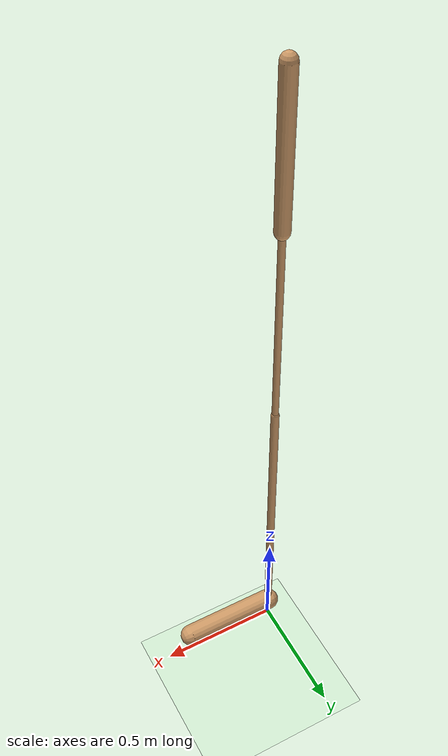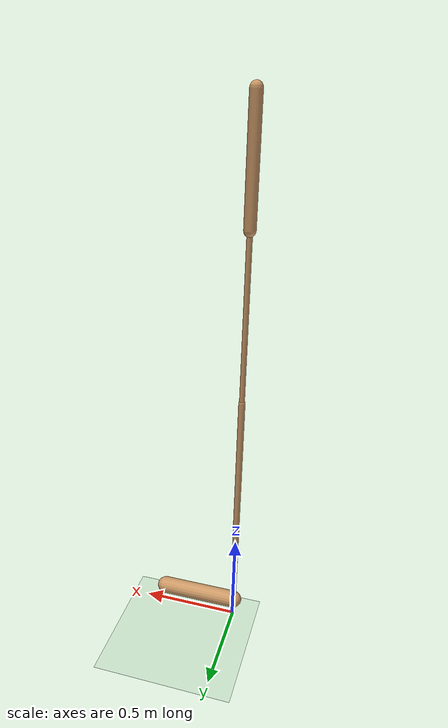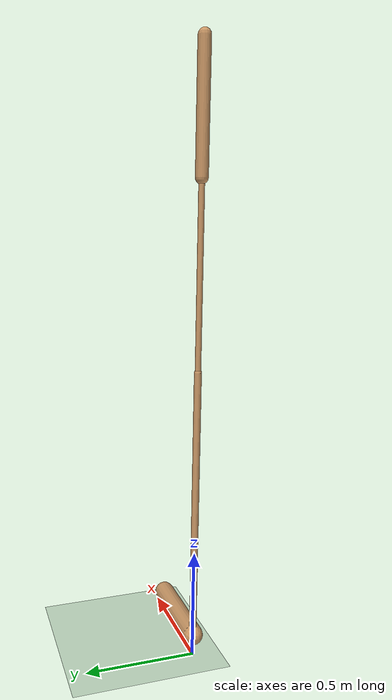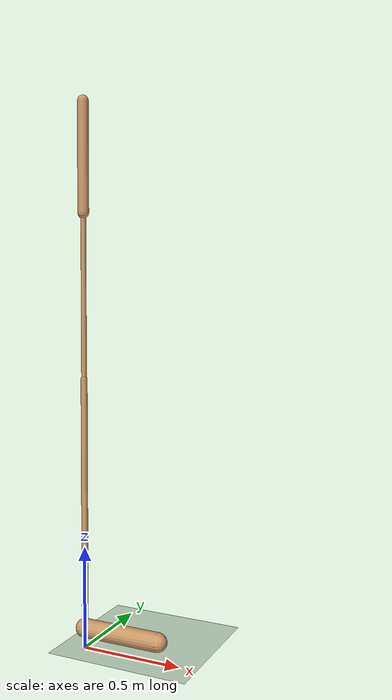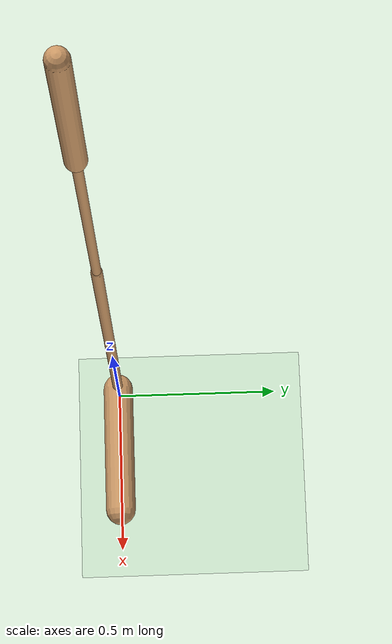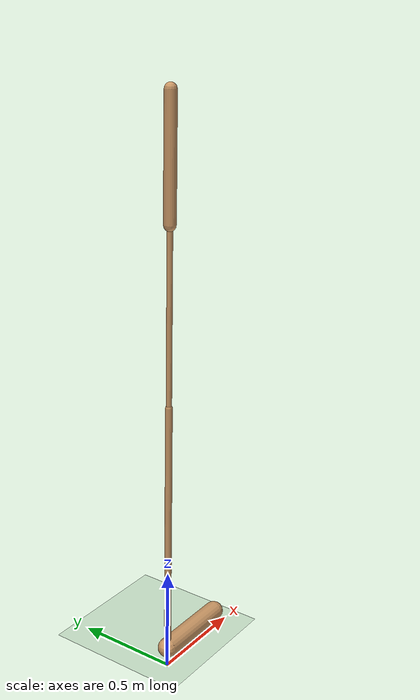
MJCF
<mujoco model="walker2d">
  <compiler angle="degree" inertiafromgeom="true" />
  <default>
    <joint armature="0.01" damping=".1" limited="true" />
    <geom conaffinity="0" condim="3" contype="1" density="1000" friction=".7 .1 .1" rgba="0.8 0.6 .4 1" />
  </default>
  <option integrator="RK4" timestep="0.002" />
  <worldbody>
    <light cutoff="100" diffuse="1 1 1" dir="-0 0 -1.3" directional="true" exponent="1" pos="0 0 1.3" specular=".1 .1 .1" />
    <geom conaffinity="1" condim="3" name="floor" pos="0 0 0" rgba="0.8 0.9 0.8 1" size="40 40 40" type="plane" material="MatPlane" />
    <body name="torso" pos="0 0 2.3635623514652253">
      <camera name="track" mode="trackcom" pos="0 -5 -1.25" xyaxes="1 0 0 0 0 1" />
      <joint armature="0" axis="1 0 0" damping="0" limited="false" name="rootx" pos="0 0 -1.25" stiffness="0" type="slide" />
      <joint armature="0" axis="0 0 1" damping="0" limited="false" name="rootz" pos="0 0 -1.25" ref="1.25" stiffness="0" type="slide" />
      <joint armature="0" axis="0 1 0" damping="0" limited="false" name="rooty" pos="0 0 0" stiffness="0" type="hinge" />
      <geom friction="0.9" name="torso_geom" size="0.026637131348252296 0.25830498337745667" type="capsule" />
      <body name="thigh" pos="0 0 -0.25830498337745667">
        <joint axis="0 -1 0" name="thigh_joint" pos="0 0 0" range="-150 0" type="hinge" />
        <site name="torso_thigh_site" pos="0 0 0" size="0.01" type="sphere" rgba="1 0 0 0.5" />
        <geom friction="0.9" pos="0 0 -0.3919197916984558" name="thigh_geom" size="0.012578831985592842 0.3919197916984558" type="capsule" />
        <body name="leg" pos="0 0 -1.39454847574234">
          <joint axis="0 -1 0" name="leg_joint" pos="0 0 0.6107088923454285" range="-150 0" type="hinge" />
          <site name="thigh_leg_site" pos="0 0 0.25" size="0.01" type="sphere" rgba="1 0 0 0.5" />
          <geom friction="0.9" name="leg_geom" size="0.0157398022711277 0.6107088923454285" type="capsule" />
          <body name="foot" pos="0.39104902744293213 0 -0.7107088923454284">
            <joint axis="0 -1 0" name="foot_joint" pos="-0.39104902744293213 0 0.1" range="-45 45" type="hinge" />
            <site name="leg_foot_site" pos="-0.2 0 0.1" size="0.01" type="sphere" rgba="1 0 0 0.5" />
            <geom friction="0.9" pos="-0.19552451372146606 0 0.1" quat="0.70710678118654757 0 -0.70710678118654746 0" name="foot_geom" size="0.04603995382785797 0.19552451372146606" type="capsule" />
          </body>
        </body>
      </body>

      <body name="thigh_left" pos="0 0 -0.25830498337745667">
        <joint axis="0 -1 0" name="thigh_left_joint" pos="0 0 0" range="-150 0" type="hinge" />
        <site name="torso_thigh_left_site" pos="0 0 0" size="0.01" type="sphere" rgba="1 0 0 0.5" />
        <geom friction="0.9" name="thigh_left_geom" rgba=".7 .3 .6 1" size="0.012578831985592842 0.3919197916984558" pos="0 0 -0.3919197916984558" type="capsule" />
        <body name="leg_left" pos="0 0 -1.39454847574234">
          <joint axis="0 -1 0" name="leg_left_joint" pos="0 0 0.6107088923454285" range="-150 0" type="hinge" />
          <site name="thigh_leg_left_site" pos="0 0 0.25" size="0.01" type="sphere" rgba="1 0 0 0.5" />
          <geom friction="0.9" name="leg_left_geom" rgba=".7 .3 .6 1" size="0.0157398022711277 0.6107088923454285" type="capsule" />
          <body name="foot_left" pos="0.39104902744293213 0 -0.7107088923454284">
            <joint axis="0 -1 0" name="foot_left_joint" pos="-0.39104902744293213 0 0.1" range="-45 45" type="hinge" />
            <site name="leg_foot_left_site" pos="-0.2 0 0.1" size="0.01" type="sphere" rgba="1 0 0 0.5" />
            <geom friction="1.9" name="foot_left_geom" rgba=".7 .3 .6 1" size="0.04603995382785797 0.19552451372146606" pos="-0.19552451372146606 0 0.1" type="capsule" quat="0.70710678118654757 0 -0.70710678118654746 0" />
          </body>
        </body>
      </body>
    </body>
  </worldbody>
  <actuator>

    <motor ctrllimited="true" ctrlrange="-1.0 1.0" gear="11.024408607230951" joint="thigh_joint" />
    <motor ctrllimited="true" ctrlrange="-1.0 1.0" gear="37.824465260155534" joint="leg_joint" />
    <motor ctrllimited="true" ctrlrange="-1.0 1.0" gear="115.12468966840453" joint="foot_joint" />
    <motor ctrllimited="true" ctrlrange="-1.0 1.0" gear="11.024408607230951" joint="thigh_left_joint" />
    <motor ctrllimited="true" ctrlrange="-1.0 1.0" gear="37.824465260155534" joint="leg_left_joint" />
    <motor ctrllimited="true" ctrlrange="-1.0 1.0" gear="115.12468966840453" joint="foot_left_joint" />

  </actuator>
    <asset>
        <texture type="skybox" builtin="gradient" rgb1=".4 .5 .6" rgb2="0 0 0" width="100" height="100" />
        <texture builtin="flat" height="1278" mark="cross" markrgb="1 1 1" name="texgeom" random="0.01" rgb1="0.8 0.6 0.4" rgb2="0.8 0.6 0.4" type="cube" width="127" />
        <texture builtin="checker" height="100" name="texplane" rgb1="0 0 0" rgb2="0.8 0.8 0.8" type="2d" width="100" />
        <material name="MatPlane" reflectance="0.5" shininess="1" specular="1" texrepeat="60 60" texture="texplane" />
        <material name="geom" texture="texgeom" texuniform="true" />
    </asset>

  <sensor>
    <force site="torso_thigh_site" name="torso_thigh_sensor" />
    <force site="thigh_leg_site" name="thigh_leg_sensor" />
    <force site="leg_foot_site" name="leg_foot_sensor" />
    <force site="torso_thigh_left_site" name="torso_thigh_left_sensor" />
    <force site="thigh_leg_left_site" name="thigh_leg_left_sensor" />
    <force site="leg_foot_left_site" name="leg_foot_left_sensor" />
  </sensor>
</mujoco>
